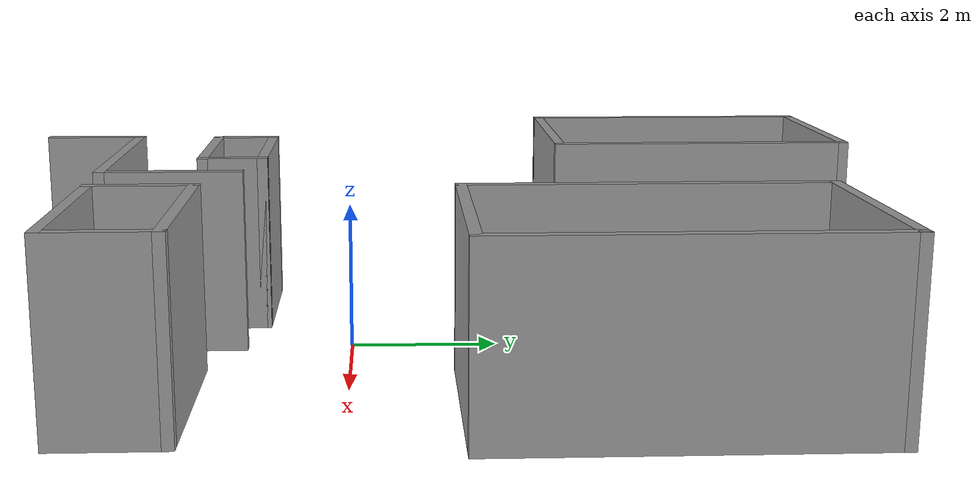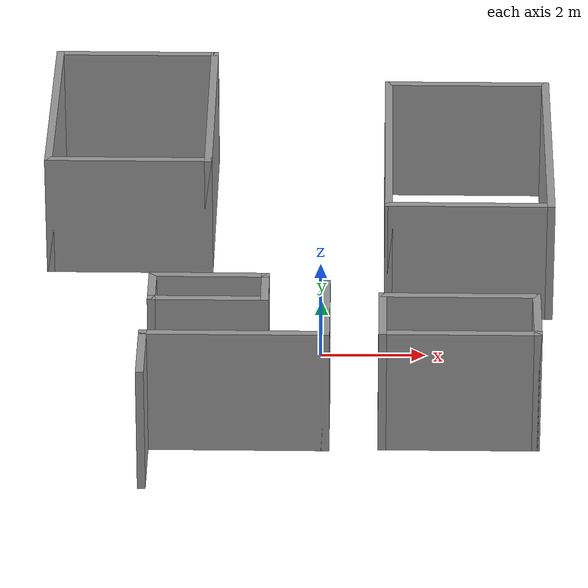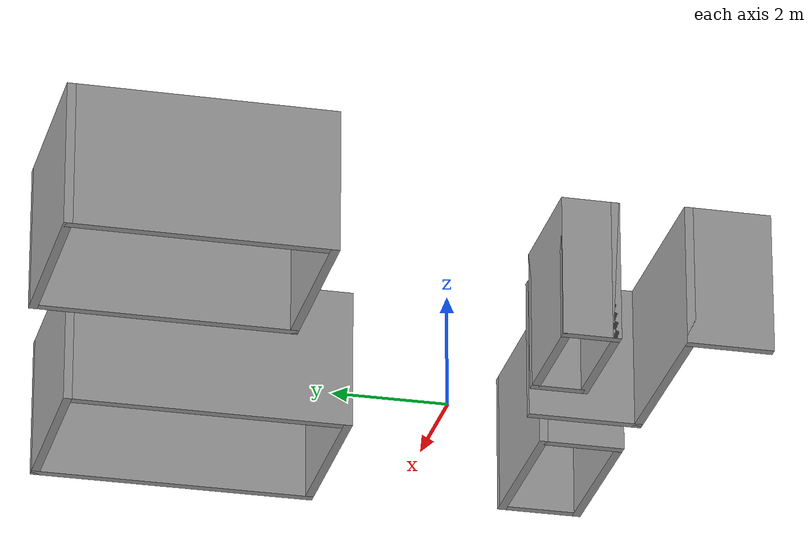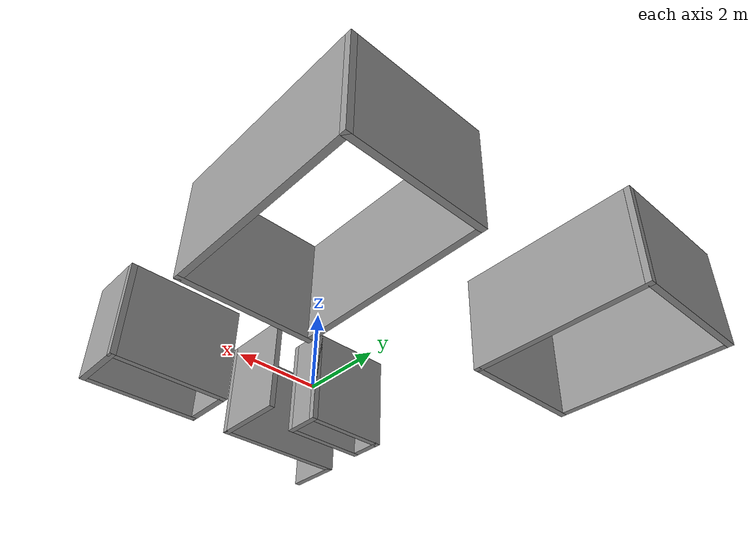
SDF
<?xml version='1.0'?>
<sdf version='1.6'>
  <model name='sim_world.world'>
    <pose frame=''>-0.470397 1.38689 0 0 -0 0</pose>
    <link name='Wall_0'>
      <collision name='Wall_0_Collision'>
        <geometry>
          <box>
            <size>1 0.15 2.5</size>
          </box>
        </geometry>
        <pose frame=''>0 0 1.25 0 -0 0</pose>
      </collision>
      <visual name='Wall_0_Visual'>
        <pose frame=''>0 0 1.25 0 -0 0</pose>
        <geometry>
          <box>
            <size>1 0.15 2.5</size>
          </box>
        </geometry>
        <material>
          <script>
            <uri>file://media/materials/scripts/gazebo.material</uri>
            <name>Gazebo/Grey</name>
          </script>
          <ambient>1 1 1 1</ambient>
        </material>
        <meta>
          <layer>0</layer>
        </meta>
      </visual>
      <pose frame=''>-2.6496 -3.08189 0 0 -0 1.5708</pose>
    </link>
    <link name='Wall_1'>
      <collision name='Wall_1_Collision'>
        <geometry>
          <box>
            <size>2.25 0.15 2.5</size>
          </box>
        </geometry>
        <pose frame=''>0 0 1.25 0 -0 0</pose>
      </collision>
      <visual name='Wall_1_Visual'>
        <pose frame=''>0 0 1.25 0 -0 0</pose>
        <geometry>
          <box>
            <size>2.25 0.15 2.5</size>
          </box>
        </geometry>
        <material>
          <script>
            <uri>file://media/materials/scripts/gazebo.material</uri>
            <name>Gazebo/Grey</name>
          </script>
          <ambient>1 1 1 1</ambient>
        </material>
        <meta>
          <layer>0</layer>
        </meta>
      </visual>
      <pose frame=''>-1.5996 -2.65689 0 0 -0 0</pose>
    </link>
    <link name='Wall_10'>
      <collision name='Wall_10_Collision'>
        <geometry>
          <box>
            <size>2 0.15 2.5</size>
          </box>
        </geometry>
        <pose frame=''>0 0 1.25 0 -0 0</pose>
      </collision>
      <visual name='Wall_10_Visual'>
        <pose frame=''>0 0 1.25 0 -0 0</pose>
        <geometry>
          <box>
            <size>2 0.15 2.5</size>
          </box>
        </geometry>
        <material>
          <script>
            <uri>file://media/materials/scripts/gazebo.material</uri>
            <name>Gazebo/Grey</name>
          </script>
          <ambient>1 1 1 1</ambient>
        </material>
        <meta>
          <layer>0</layer>
        </meta>
      </visual>
      <pose frame=''>0.590397 -3.82189 0 0 -0 -1.5708</pose>
    </link>
    <link name='Wall_11'>
      <collision name='Wall_11_Collision'>
        <geometry>
          <box>
            <size>3.5 0.15 2.5</size>
          </box>
        </geometry>
        <pose frame=''>0 0 1.25 0 -0 0</pose>
      </collision>
      <visual name='Wall_11_Visual'>
        <pose frame=''>0 0 1.25 0 -0 0</pose>
        <geometry>
          <box>
            <size>3.5 0.15 2.5</size>
          </box>
        </geometry>
        <material>
          <script>
            <uri>file://media/materials/scripts/gazebo.material</uri>
            <name>Gazebo/Grey</name>
          </script>
          <ambient>1 1 1 1</ambient>
        </material>
        <meta>
          <layer>0</layer>
        </meta>
      </visual>
      <pose frame=''>-1.0846 -4.74689 0 0 -0 3.14159</pose>
    </link>
    <link name='Wall_12'>
      <collision name='Wall_12_Collision'>
        <geometry>
          <box>
            <size>1.5 0.15 2.5</size>
          </box>
        </geometry>
        <pose frame=''>0 0 1.25 0 -0 0</pose>
      </collision>
      <visual name='Wall_12_Visual'>
        <pose frame=''>0 0 1.25 0 -0 0</pose>
        <geometry>
          <box>
            <size>1.5 0.15 2.5</size>
          </box>
        </geometry>
        <material>
          <script>
            <uri>file://media/materials/scripts/gazebo.material</uri>
            <name>Gazebo/Grey</name>
          </script>
          <ambient>1 1 1 1</ambient>
        </material>
        <meta>
          <layer>0</layer>
        </meta>
      </visual>
      <pose frame=''>-2.7596 -5.42189 0 0 -0 -1.5708</pose>
    </link>
    <link name='Wall_14'>
      <collision name='Wall_14_Collision'>
        <geometry>
          <box>
            <size>3.25 0.15 2.5</size>
          </box>
        </geometry>
        <pose frame=''>0 0 1.25 0 -0 0</pose>
      </collision>
      <visual name='Wall_14_Visual'>
        <pose frame=''>0 0 1.25 0 -0 0</pose>
        <geometry>
          <box>
            <size>3.25 0.15 2.5</size>
          </box>
        </geometry>
        <material>
          <script>
            <uri>file://media/materials/scripts/gazebo.material</uri>
            <name>Gazebo/Grey</name>
          </script>
          <ambient>1 1 1 1</ambient>
        </material>
        <meta>
          <layer>0</layer>
        </meta>
      </visual>
      <pose frame=''>3.29863 0.057353 0 0 -0 0</pose>
    </link>
    <link name='Wall_15'>
      <collision name='Wall_15_Collision'>
        <geometry>
          <box>
            <size>5 0.15 2.5</size>
          </box>
        </geometry>
        <pose frame=''>0 0 1.25 0 -0 0</pose>
      </collision>
      <visual name='Wall_15_Visual'>
        <pose frame=''>0 0 1.25 0 -0 0</pose>
        <geometry>
          <box>
            <size>5 0.15 2.5</size>
          </box>
        </geometry>
        <material>
          <script>
            <uri>file://media/materials/scripts/gazebo.material</uri>
            <name>Gazebo/Grey</name>
          </script>
          <ambient>1 1 1 1</ambient>
        </material>
        <meta>
          <layer>0</layer>
        </meta>
      </visual>
      <pose frame=''>4.84863 2.48235 0 0 -0 1.5708</pose>
    </link>
    <link name='Wall_16'>
      <collision name='Wall_16_Collision'>
        <geometry>
          <box>
            <size>3.25 0.15 2.5</size>
          </box>
        </geometry>
        <pose frame=''>0 0 1.25 0 -0 0</pose>
      </collision>
      <visual name='Wall_16_Visual'>
        <pose frame=''>0 0 1.25 0 -0 0</pose>
        <geometry>
          <box>
            <size>3.25 0.15 2.5</size>
          </box>
        </geometry>
        <material>
          <script>
            <uri>file://media/materials/scripts/gazebo.material</uri>
            <name>Gazebo/Grey</name>
          </script>
          <ambient>1 1 1 1</ambient>
        </material>
        <meta>
          <layer>0</layer>
        </meta>
      </visual>
      <pose frame=''>3.29863 4.90735 0 0 -0 3.14159</pose>
    </link>
    <link name='Wall_17'>
      <collision name='Wall_17_Collision'>
        <geometry>
          <box>
            <size>5 0.15 2.5</size>
          </box>
        </geometry>
        <pose frame=''>0 0 1.25 0 -0 0</pose>
      </collision>
      <visual name='Wall_17_Visual'>
        <pose frame=''>0 0 1.25 0 -0 0</pose>
        <geometry>
          <box>
            <size>5 0.15 2.5</size>
          </box>
        </geometry>
        <material>
          <script>
            <uri>file://media/materials/scripts/gazebo.material</uri>
            <name>Gazebo/Grey</name>
          </script>
          <ambient>1 1 1 1</ambient>
        </material>
        <meta>
          <layer>0</layer>
        </meta>
      </visual>
      <pose frame=''>1.74863 2.48235 0 0 -0 -1.5708</pose>
    </link>
    <link name='Wall_19'>
      <collision name='Wall_19_Collision'>
        <geometry>
          <box>
            <size>3.25 0.15 2.5</size>
          </box>
        </geometry>
        <pose frame=''>0 0 1.25 0 -0 0</pose>
      </collision>
      <visual name='Wall_19_Visual'>
        <pose frame=''>0 0 1.25 0 -0 0</pose>
        <geometry>
          <box>
            <size>3.25 0.15 2.5</size>
          </box>
        </geometry>
        <material>
          <script>
            <uri>file://media/materials/scripts/gazebo.material</uri>
            <name>Gazebo/Grey</name>
          </script>
          <ambient>1 1 1 1</ambient>
        </material>
        <meta>
          <layer>0</layer>
        </meta>
      </visual>
      <pose frame=''>-3.29863 1.74689 0 0 -0 0</pose>
    </link>
    <link name='Wall_2'>
      <collision name='Wall_2_Collision'>
        <geometry>
          <box>
            <size>1 0.15 2.5</size>
          </box>
        </geometry>
        <pose frame=''>0 0 1.25 0 -0 0</pose>
      </collision>
      <visual name='Wall_2_Visual'>
        <pose frame=''>0 0 1.25 0 -0 0</pose>
        <geometry>
          <box>
            <size>1 0.15 2.5</size>
          </box>
        </geometry>
        <material>
          <script>
            <uri>file://media/materials/scripts/gazebo.material</uri>
            <name>Gazebo/Grey</name>
          </script>
          <ambient>1 1 1 1</ambient>
        </material>
        <meta>
          <layer>0</layer>
        </meta>
      </visual>
      <pose frame=''>-0.549603 -3.08189 0 0 -0 -1.5708</pose>
    </link>
    <link name='Wall_20'>
      <collision name='Wall_20_Collision'>
        <geometry>
          <box>
            <size>4.5 0.15 2.5</size>
          </box>
        </geometry>
        <pose frame=''>0 0 1.25 0 -0 0</pose>
      </collision>
      <visual name='Wall_20_Visual'>
        <pose frame=''>0 0 1.25 0 -0 0</pose>
        <geometry>
          <box>
            <size>4.5 0.15 2.5</size>
          </box>
        </geometry>
        <material>
          <script>
            <uri>file://media/materials/scripts/gazebo.material</uri>
            <name>Gazebo/Grey</name>
          </script>
          <ambient>1 1 1 1</ambient>
        </material>
        <meta>
          <layer>0</layer>
        </meta>
      </visual>
      <pose frame=''>-1.74863 3.92189 0 0 -0 1.5708</pose>
    </link>
    <link name='Wall_21'>
      <collision name='Wall_21_Collision'>
        <geometry>
          <box>
            <size>3.25 0.15 2.5</size>
          </box>
        </geometry>
        <pose frame=''>0 0 1.25 0 -0 0</pose>
      </collision>
      <visual name='Wall_21_Visual'>
        <pose frame=''>0 0 1.25 0 -0 0</pose>
        <geometry>
          <box>
            <size>3.25 0.15 2.5</size>
          </box>
        </geometry>
        <material>
          <script>
            <uri>file://media/materials/scripts/gazebo.material</uri>
            <name>Gazebo/Grey</name>
          </script>
          <ambient>1 1 1 1</ambient>
        </material>
        <meta>
          <layer>0</layer>
        </meta>
      </visual>
      <pose frame=''>-3.29863 6.09689 0 0 -0 3.14159</pose>
    </link>
    <link name='Wall_22'>
      <collision name='Wall_22_Collision'>
        <geometry>
          <box>
            <size>4.5 0.15 2.5</size>
          </box>
        </geometry>
        <pose frame=''>0 0 1.25 0 -0 0</pose>
      </collision>
      <visual name='Wall_22_Visual'>
        <pose frame=''>0 0 1.25 0 -0 0</pose>
        <geometry>
          <box>
            <size>4.5 0.15 2.5</size>
          </box>
        </geometry>
        <material>
          <script>
            <uri>file://media/materials/scripts/gazebo.material</uri>
            <name>Gazebo/Grey</name>
          </script>
          <ambient>1 1 1 1</ambient>
        </material>
        <meta>
          <layer>0</layer>
        </meta>
      </visual>
      <pose frame=''>-4.84863 3.92189 0 0 -0 -1.5708</pose>
    </link>
    <link name='Wall_3'>
      <collision name='Wall_3_Collision'>
        <geometry>
          <box>
            <size>2.25 0.15 2.5</size>
          </box>
        </geometry>
        <pose frame=''>0 0 1.25 0 -0 0</pose>
      </collision>
      <visual name='Wall_3_Visual'>
        <pose frame=''>0 0 1.25 0 -0 0</pose>
        <geometry>
          <box>
            <size>2.25 0.15 2.5</size>
          </box>
        </geometry>
        <material>
          <script>
            <uri>file://media/materials/scripts/gazebo.material</uri>
            <name>Gazebo/Grey</name>
          </script>
          <ambient>1 1 1 1</ambient>
        </material>
        <meta>
          <layer>0</layer>
        </meta>
      </visual>
      <pose frame=''>-1.5996 -3.50689 0 0 -0 3.14159</pose>
    </link>
    <link name='Wall_5'>
      <collision name='Wall_5_Collision'>
        <geometry>
          <box>
            <size>1.5 0.15 2.5</size>
          </box>
        </geometry>
        <pose frame=''>0 0 1.25 0 -0 0</pose>
      </collision>
      <visual name='Wall_5_Visual'>
        <pose frame=''>0 0 1.25 0 -0 0</pose>
        <geometry>
          <box>
            <size>1.5 0.15 2.5</size>
          </box>
        </geometry>
        <material>
          <script>
            <uri>file://media/materials/scripts/gazebo.material</uri>
            <name>Gazebo/Grey</name>
          </script>
          <ambient>1 1 1 1</ambient>
        </material>
        <meta>
          <layer>0</layer>
        </meta>
      </visual>
      <pose frame=''>1.6404 -4.02189 0 0 -0 -1.5708</pose>
    </link>
    <link name='Wall_6'>
      <collision name='Wall_6_Collision'>
        <geometry>
          <box>
            <size>3 0.15 2.5</size>
          </box>
        </geometry>
        <pose frame=''>0 0 1.25 0 -0 0</pose>
      </collision>
      <visual name='Wall_6_Visual'>
        <pose frame=''>0 0 1.25 0 -0 0</pose>
        <geometry>
          <box>
            <size>3 0.15 2.5</size>
          </box>
        </geometry>
        <material>
          <script>
            <uri>file://media/materials/scripts/gazebo.material</uri>
            <name>Gazebo/Grey</name>
          </script>
          <ambient>1 1 1 1</ambient>
        </material>
        <meta>
          <layer>0</layer>
        </meta>
      </visual>
      <pose frame=''>3.0654 -4.69689 0 0 -0 0</pose>
    </link>
    <link name='Wall_7'>
      <collision name='Wall_7_Collision'>
        <geometry>
          <box>
            <size>1.5 0.15 2.5</size>
          </box>
        </geometry>
        <pose frame=''>0 0 1.25 0 -0 0</pose>
      </collision>
      <visual name='Wall_7_Visual'>
        <pose frame=''>0 0 1.25 0 -0 0</pose>
        <geometry>
          <box>
            <size>1.5 0.15 2.5</size>
          </box>
        </geometry>
        <material>
          <script>
            <uri>file://media/materials/scripts/gazebo.material</uri>
            <name>Gazebo/Grey</name>
          </script>
          <ambient>1 1 1 1</ambient>
        </material>
        <meta>
          <layer>0</layer>
        </meta>
      </visual>
      <pose frame=''>4.4904 -4.02189 0 0 -0 1.5708</pose>
    </link>
    <link name='Wall_8'>
      <collision name='Wall_8_Collision'>
        <geometry>
          <box>
            <size>3 0.15 2.5</size>
          </box>
        </geometry>
        <pose frame=''>0 0 1.25 0 -0 0</pose>
      </collision>
      <visual name='Wall_8_Visual'>
        <pose frame=''>0 0 1.25 0 -0 0</pose>
        <geometry>
          <box>
            <size>3 0.15 2.5</size>
          </box>
        </geometry>
        <material>
          <script>
            <uri>file://media/materials/scripts/gazebo.material</uri>
            <name>Gazebo/Grey</name>
          </script>
          <ambient>1 1 1 1</ambient>
        </material>
        <meta>
          <layer>0</layer>
        </meta>
      </visual>
      <pose frame=''>3.0654 -3.34689 0 0 -0 3.14159</pose>
    </link>
    <static>1</static>
  </model>
</sdf>
